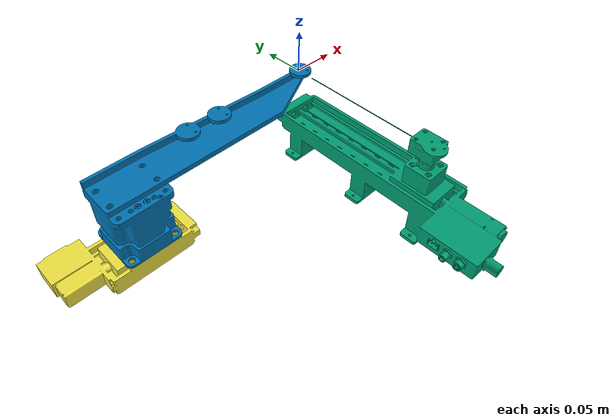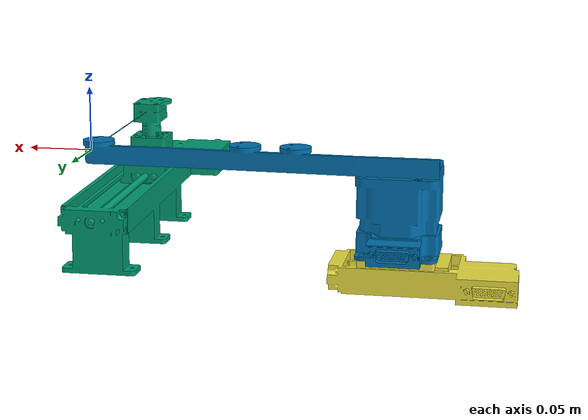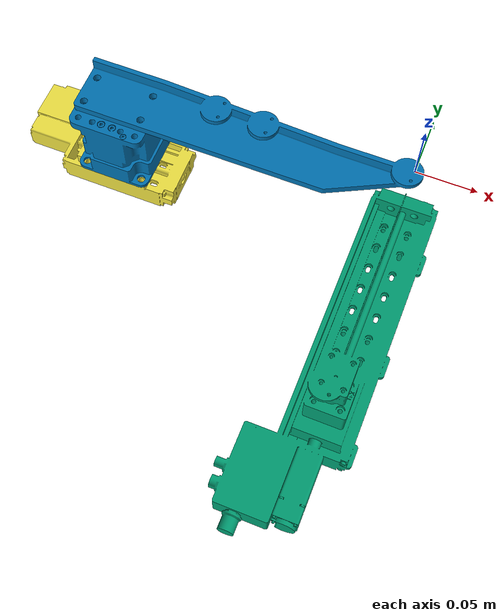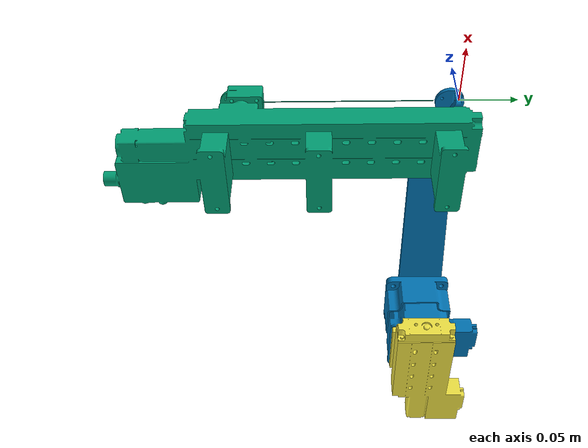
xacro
<?xml version="1.0"?>
<robot xmlns:xacro="http://wiki.ros.org/xacro" name="$(arg name)">

  <xacro:arg name="name" default="jhu"/>
  <xacro:arg name="use_ros2_control" default="true"/>
  <xacro:arg name="com_port" default="/dev/ttyUSB0"/>

  <xacro:include filename="$(find zaber_description)/urdf/zaber_macro.xacro"/>
  <xacro:include filename="$(find zaber_description)/urdf/zaber.ros2_control.xacro"/>

   <!-- create link fixed to the "world" -->
   <link name="world" />

   <xacro:zaber_robot name="$(arg name)">
   </xacro:zaber_robot>

   <xacro:if value="$(arg use_ros2_control)">
     <xacro:zaber_ros2_control name="$(arg name)" prefix="" com_port="$(arg com_port)"/>
   </xacro:if>

   <joint name="base_joint" type="fixed">
    <parent link="world"/>
    <child link="base_link" />
  </joint>

</robot>

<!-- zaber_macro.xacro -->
<robot xmlns:xacro="http://wiki.ros.org/xacro">

  <xacro:macro name="zaber_robot" params="name">

    <link name="base_link"/>

    <link name="y_link">
     <visual>
        <origin xyz="0 0 0" rpy="0 0 ${pi}"/>
        <geometry>
	  <mesh filename="package://zaber_description/meshes/zaber_lmh_y.stl"/>
       </geometry>
      </visual>
      <collision>
        <origin xyz="0 0 0" rpy="0 0 ${pi}"/>
        <geometry>
	  <mesh filename="package://zaber_description/meshes/zaber_lmh_y.stl"/>
        </geometry>
      </collision>
    </link>

    <link name="x_link">
     <visual>
        <origin xyz="0 0 0" rpy="0 0 ${pi}"/>
        <geometry>
	  <mesh filename="package://zaber_description/meshes/zaber_lmh_x.stl"/>
       </geometry>
      </visual>
      <collision>
        <origin xyz="0 0 0" rpy="0 0 ${pi}"/>
        <geometry>
	  <mesh filename="package://zaber_description/meshes/zaber_lmh_x.stl"/>
        </geometry>
      </collision>
    </link>

    <link name="z_link">
     <visual>
        <origin xyz="0 0 0" rpy="0 0 ${pi}"/>
        <geometry>
	  <mesh filename="package://zaber_description/meshes/zaber_vsr_z.stl"/>
       </geometry>
      </visual>
      <collision>
        <origin xyz="0 0 0" rpy="0 0 ${pi}"/>
        <geometry>
	  <mesh filename="package://zaber_description/meshes/zaber_vsr_z.stl"/>
        </geometry>
      </collision>
    </link>

    <joint name="horizontal_joint" type="prismatic">
      <origin xyz="0 0 0" rpy="0 0 0"/>
      <parent link="base_link"/>
      <child link="x_link"/>
      <axis xyz="1.0 0.0 0.0"/>
      <limit upper="0.03" lower="-0.03" effort="100" velocity="100"/>
    </joint>

    <joint name="insertion_joint" type="prismatic">
      <origin xyz="0 0 0" rpy="0 0 0"/>
      <parent link="base_link"/>
      <child link="y_link"/>
      <axis xyz="0.0 1.0 0.0"/>
      <limit upper="0.1" lower="0.0" effort="100" velocity="100"/>
    </joint>

    <joint name="vertical_joint" type="prismatic">
      <origin xyz="0 0 0" rpy="0 0 0"/>
      <parent link="x_link"/>
      <child link="z_link"/>
      <axis xyz="0.0 0.0 1.0"/>
      <limit upper="0.05" lower="0.0" effort="100" velocity="100"/>
    </joint>

  </xacro:macro>

</robot>
